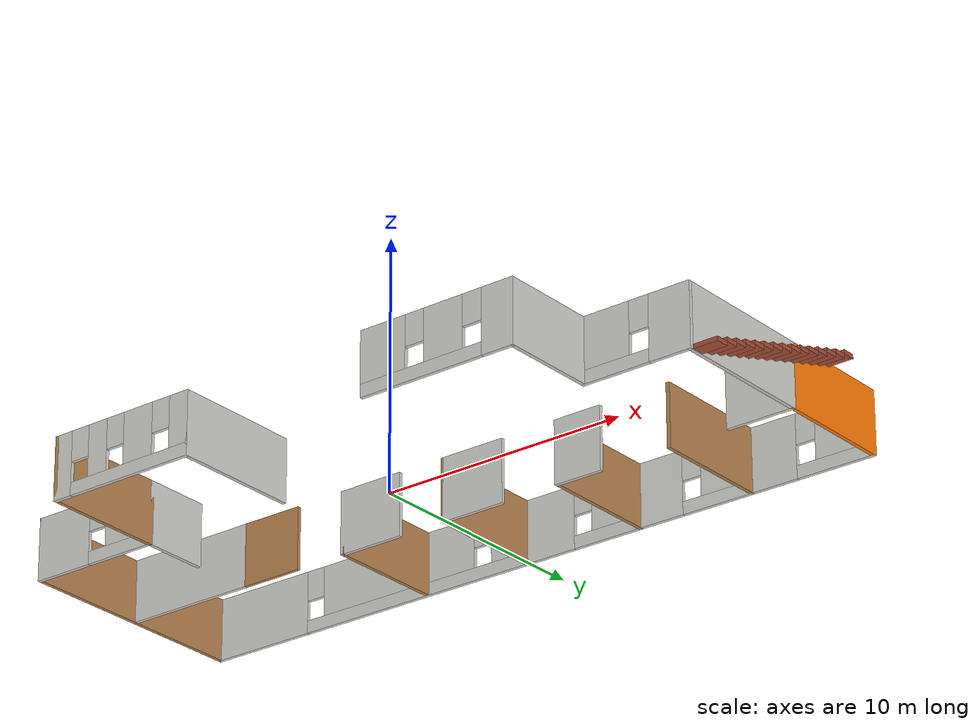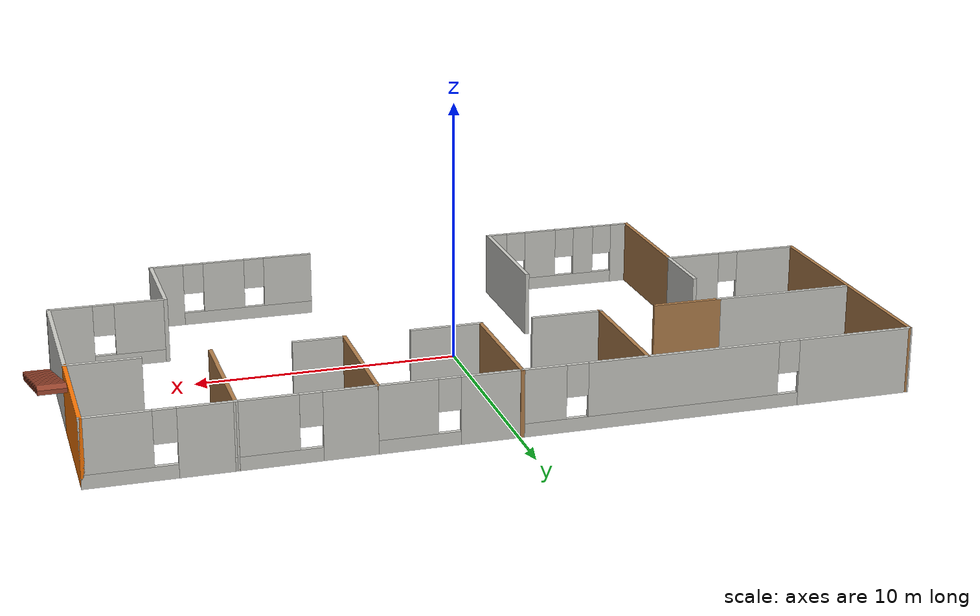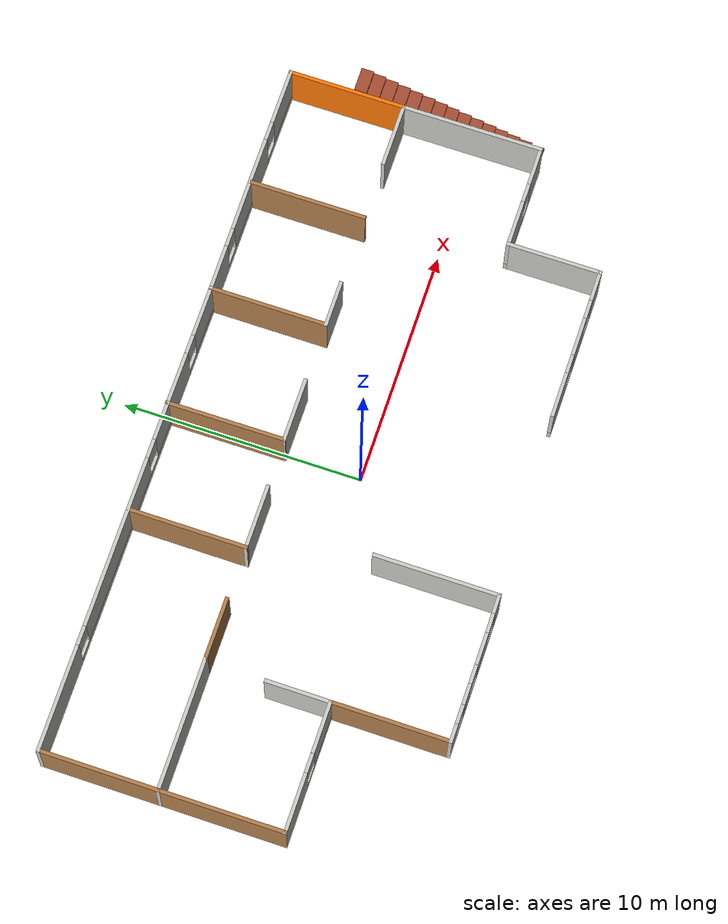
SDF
<?xml version='1.0'?>
<sdf version='1.6'>
  <model name='Building'>
    <pose frame=''>0.521906 0.614781 0 0 -0 0</pose>
    <link name='Stairs_0'>
      <visual name='Stairs_0_Visual_0'>
        <pose frame=''>15.0099 -3.00809 0.083333 0 -0 -3.14159</pose>
        <geometry>
          <box>
            <size>1 0.530862 0.166667</size>
          </box>
        </geometry>
        <material>
          <script>
            <uri>file://media/materials/scripts/gazebo.material</uri>
            <name>Gazebo/Bricks</name>
          </script>
          <ambient>0.760784 0.662745 0.627451 1</ambient>
        </material>
        <meta>
          <layer>0</layer>
        </meta>
      </visual>
      <collision name='Stairs_0_Collision_0'>
        <geometry>
          <box>
            <size>1 0.530862 0.166667</size>
          </box>
        </geometry>
        <pose frame=''>15.0099 -3.00809 0.083333 0 -0 -3.14159</pose>
      </collision>
      <visual name='Stairs_0_Visual_1'>
        <pose frame=''>15.0099 -2.47723 0.25 0 -0 -3.14159</pose>
        <geometry>
          <box>
            <size>1 0.530862 0.166667</size>
          </box>
        </geometry>
        <material>
          <script>
            <uri>file://media/materials/scripts/gazebo.material</uri>
            <name>Gazebo/Bricks</name>
          </script>
          <ambient>0.760784 0.662745 0.627451 1</ambient>
        </material>
        <meta>
          <layer>0</layer>
        </meta>
      </visual>
      <collision name='Stairs_0_Collision_1'>
        <geometry>
          <box>
            <size>1 0.530862 0.166667</size>
          </box>
        </geometry>
        <pose frame=''>15.0099 -2.47723 0.25 0 -0 -3.14159</pose>
      </collision>
      <visual name='Stairs_0_Visual_2'>
        <pose frame=''>15.0099 -1.94637 0.416667 0 -0 -3.14159</pose>
        <geometry>
          <box>
            <size>1 0.530862 0.166667</size>
          </box>
        </geometry>
        <material>
          <script>
            <uri>file://media/materials/scripts/gazebo.material</uri>
            <name>Gazebo/Bricks</name>
          </script>
          <ambient>0.760784 0.662745 0.627451 1</ambient>
        </material>
        <meta>
          <layer>0</layer>
        </meta>
      </visual>
      <collision name='Stairs_0_Collision_2'>
        <geometry>
          <box>
            <size>1 0.530862 0.166667</size>
          </box>
        </geometry>
        <pose frame=''>15.0099 -1.94637 0.416667 0 -0 -3.14159</pose>
      </collision>
      <visual name='Stairs_0_Visual_3'>
        <pose frame=''>15.0099 -1.41551 0.583333 0 -0 -3.14159</pose>
        <geometry>
          <box>
            <size>1 0.530862 0.166667</size>
          </box>
        </geometry>
        <material>
          <script>
            <uri>file://media/materials/scripts/gazebo.material</uri>
            <name>Gazebo/Bricks</name>
          </script>
          <ambient>0.760784 0.662745 0.627451 1</ambient>
        </material>
        <meta>
          <layer>0</layer>
        </meta>
      </visual>
      <collision name='Stairs_0_Collision_3'>
        <geometry>
          <box>
            <size>1 0.530862 0.166667</size>
          </box>
        </geometry>
        <pose frame=''>15.0099 -1.41551 0.583333 0 -0 -3.14159</pose>
      </collision>
      <visual name='Stairs_0_Visual_4'>
        <pose frame=''>15.0099 -0.884647 0.75 0 -0 -3.14159</pose>
        <geometry>
          <box>
            <size>1 0.530862 0.166667</size>
          </box>
        </geometry>
        <material>
          <script>
            <uri>file://media/materials/scripts/gazebo.material</uri>
            <name>Gazebo/Bricks</name>
          </script>
          <ambient>0.760784 0.662745 0.627451 1</ambient>
        </material>
        <meta>
          <layer>0</layer>
        </meta>
      </visual>
      <collision name='Stairs_0_Collision_4'>
        <geometry>
          <box>
            <size>1 0.530862 0.166667</size>
          </box>
        </geometry>
        <pose frame=''>15.0099 -0.884647 0.75 0 -0 -3.14159</pose>
      </collision>
      <visual name='Stairs_0_Visual_5'>
        <pose frame=''>15.0099 -0.353786 0.916667 0 -0 -3.14159</pose>
        <geometry>
          <box>
            <size>1 0.530862 0.166667</size>
          </box>
        </geometry>
        <material>
          <script>
            <uri>file://media/materials/scripts/gazebo.material</uri>
            <name>Gazebo/Bricks</name>
          </script>
          <ambient>0.760784 0.662745 0.627451 1</ambient>
        </material>
        <meta>
          <layer>0</layer>
        </meta>
      </visual>
      <collision name='Stairs_0_Collision_5'>
        <geometry>
          <box>
            <size>1 0.530862 0.166667</size>
          </box>
        </geometry>
        <pose frame=''>15.0099 -0.353786 0.916667 0 -0 -3.14159</pose>
      </collision>
      <visual name='Stairs_0_Visual_6'>
        <pose frame=''>15.0099 0.177076 1.08333 0 -0 -3.14159</pose>
        <geometry>
          <box>
            <size>1 0.530862 0.166667</size>
          </box>
        </geometry>
        <material>
          <script>
            <uri>file://media/materials/scripts/gazebo.material</uri>
            <name>Gazebo/Bricks</name>
          </script>
          <ambient>0.760784 0.662745 0.627451 1</ambient>
        </material>
        <meta>
          <layer>0</layer>
        </meta>
      </visual>
      <collision name='Stairs_0_Collision_6'>
        <geometry>
          <box>
            <size>1 0.530862 0.166667</size>
          </box>
        </geometry>
        <pose frame=''>15.0099 0.177076 1.08333 0 -0 -3.14159</pose>
      </collision>
      <visual name='Stairs_0_Visual_7'>
        <pose frame=''>15.0099 0.707938 1.25 0 -0 -3.14159</pose>
        <geometry>
          <box>
            <size>1 0.530862 0.166667</size>
          </box>
        </geometry>
        <material>
          <script>
            <uri>file://media/materials/scripts/gazebo.material</uri>
            <name>Gazebo/Bricks</name>
          </script>
          <ambient>0.760784 0.662745 0.627451 1</ambient>
        </material>
        <meta>
          <layer>0</layer>
        </meta>
      </visual>
      <collision name='Stairs_0_Collision_7'>
        <geometry>
          <box>
            <size>1 0.530862 0.166667</size>
          </box>
        </geometry>
        <pose frame=''>15.0099 0.707938 1.25 0 -0 -3.14159</pose>
      </collision>
      <visual name='Stairs_0_Visual_8'>
        <pose frame=''>15.0099 1.2388 1.41667 0 -0 -3.14159</pose>
        <geometry>
          <box>
            <size>1 0.530862 0.166667</size>
          </box>
        </geometry>
        <material>
          <script>
            <uri>file://media/materials/scripts/gazebo.material</uri>
            <name>Gazebo/Bricks</name>
          </script>
          <ambient>0.760784 0.662745 0.627451 1</ambient>
        </material>
        <meta>
          <layer>0</layer>
        </meta>
      </visual>
      <collision name='Stairs_0_Collision_8'>
        <geometry>
          <box>
            <size>1 0.530862 0.166667</size>
          </box>
        </geometry>
        <pose frame=''>15.0099 1.2388 1.41667 0 -0 -3.14159</pose>
      </collision>
      <visual name='Stairs_0_Visual_9'>
        <pose frame=''>15.0099 1.76966 1.58333 0 -0 -3.14159</pose>
        <geometry>
          <box>
            <size>1 0.530862 0.166667</size>
          </box>
        </geometry>
        <material>
          <script>
            <uri>file://media/materials/scripts/gazebo.material</uri>
            <name>Gazebo/Bricks</name>
          </script>
          <ambient>0.760784 0.662745 0.627451 1</ambient>
        </material>
        <meta>
          <layer>0</layer>
        </meta>
      </visual>
      <collision name='Stairs_0_Collision_9'>
        <geometry>
          <box>
            <size>1 0.530862 0.166667</size>
          </box>
        </geometry>
        <pose frame=''>15.0099 1.76966 1.58333 0 -0 -3.14159</pose>
      </collision>
      <visual name='Stairs_0_Visual_10'>
        <pose frame=''>15.0099 2.30052 1.75 0 -0 -3.14159</pose>
        <geometry>
          <box>
            <size>1 0.530862 0.166667</size>
          </box>
        </geometry>
        <material>
          <script>
            <uri>file://media/materials/scripts/gazebo.material</uri>
            <name>Gazebo/Bricks</name>
          </script>
          <ambient>0.760784 0.662745 0.627451 1</ambient>
        </material>
        <meta>
          <layer>0</layer>
        </meta>
      </visual>
      <collision name='Stairs_0_Collision_10'>
        <geometry>
          <box>
            <size>1 0.530862 0.166667</size>
          </box>
        </geometry>
        <pose frame=''>15.0099 2.30052 1.75 0 -0 -3.14159</pose>
      </collision>
      <visual name='Stairs_0_Visual_11'>
        <pose frame=''>15.0099 2.83139 1.91667 0 -0 -3.14159</pose>
        <geometry>
          <box>
            <size>1 0.530862 0.166667</size>
          </box>
        </geometry>
        <material>
          <script>
            <uri>file://media/materials/scripts/gazebo.material</uri>
            <name>Gazebo/Bricks</name>
          </script>
          <ambient>0.760784 0.662745 0.627451 1</ambient>
        </material>
        <meta>
          <layer>0</layer>
        </meta>
      </visual>
      <collision name='Stairs_0_Collision_11'>
        <geometry>
          <box>
            <size>1 0.530862 0.166667</size>
          </box>
        </geometry>
        <pose frame=''>15.0099 2.83139 1.91667 0 -0 -3.14159</pose>
      </collision>
      <visual name='Stairs_0_Visual_12'>
        <pose frame=''>15.0099 3.36225 2.08333 0 -0 -3.14159</pose>
        <geometry>
          <box>
            <size>1 0.530862 0.166667</size>
          </box>
        </geometry>
        <material>
          <script>
            <uri>file://media/materials/scripts/gazebo.material</uri>
            <name>Gazebo/Bricks</name>
          </script>
          <ambient>0.760784 0.662745 0.627451 1</ambient>
        </material>
        <meta>
          <layer>0</layer>
        </meta>
      </visual>
      <collision name='Stairs_0_Collision_12'>
        <geometry>
          <box>
            <size>1 0.530862 0.166667</size>
          </box>
        </geometry>
        <pose frame=''>15.0099 3.36225 2.08333 0 -0 -3.14159</pose>
      </collision>
      <visual name='Stairs_0_Visual_13'>
        <pose frame=''>15.0099 3.89311 2.25 0 -0 -3.14159</pose>
        <geometry>
          <box>
            <size>1 0.530862 0.166667</size>
          </box>
        </geometry>
        <material>
          <script>
            <uri>file://media/materials/scripts/gazebo.material</uri>
            <name>Gazebo/Bricks</name>
          </script>
          <ambient>0.760784 0.662745 0.627451 1</ambient>
        </material>
        <meta>
          <layer>0</layer>
        </meta>
      </visual>
      <collision name='Stairs_0_Collision_13'>
        <geometry>
          <box>
            <size>1 0.530862 0.166667</size>
          </box>
        </geometry>
        <pose frame=''>15.0099 3.89311 2.25 0 -0 -3.14159</pose>
      </collision>
      <visual name='Stairs_0_Visual_14'>
        <pose frame=''>15.0099 4.42397 2.41667 0 -0 -3.14159</pose>
        <geometry>
          <box>
            <size>1 0.530862 0.166667</size>
          </box>
        </geometry>
        <material>
          <script>
            <uri>file://media/materials/scripts/gazebo.material</uri>
            <name>Gazebo/Bricks</name>
          </script>
          <ambient>0.760784 0.662745 0.627451 1</ambient>
        </material>
        <meta>
          <layer>0</layer>
        </meta>
      </visual>
      <collision name='Stairs_0_Collision_14'>
        <geometry>
          <box>
            <size>1 0.530862 0.166667</size>
          </box>
        </geometry>
        <pose frame=''>15.0099 4.42397 2.41667 0 -0 -3.14159</pose>
      </collision>
    </link>
    <link name='Wall_10'>
      <collision name='Wall_10_Collision'>
        <geometry>
          <box>
            <size>5.01454 0.15 2.5</size>
          </box>
        </geometry>
        <pose frame=''>0 0 1.25 0 -0 0</pose>
      </collision>
      <visual name='Wall_10_Visual'>
        <pose frame=''>0 0 1.25 0 -0 0</pose>
        <geometry>
          <box>
            <size>5.01454 0.15 2.5</size>
          </box>
        </geometry>
        <material>
          <script>
            <uri>file://media/materials/scripts/gazebo.material</uri>
            <name>Gazebo/Wood</name>
          </script>
          <ambient>1 1 1 1</ambient>
        </material>
        <meta>
          <layer>0</layer>
        </meta>
      </visual>
      <pose frame=''>-0.636839 4.97487 0 0 -0 -1.56723</pose>
    </link>
    <link name='Wall_12'>
      <pose frame=''>1.91233 7.37959 0 0 -0 -0.002835</pose>
      <visual name='Wall_12_Visual_0'>
        <pose frame=''>-1.49665 0 1.25 0 -0 0</pose>
        <geometry>
          <box>
            <size>2.2724 0.15 2.5</size>
          </box>
        </geometry>
        <material>
          <script>
            <uri>file://media/materials/scripts/gazebo.material</uri>
            <name>Gazebo/CeilingTiled</name>
          </script>
          <ambient>0.996078 0.47451 0.0196078 1</ambient>
        </material>
        <meta>
          <layer>0</layer>
        </meta>
      </visual>
      <collision name='Wall_12_Collision_0'>
        <geometry>
          <box>
            <size>2.2724 0.15 2.5</size>
          </box>
        </geometry>
        <pose frame=''>-1.49665 0 1.25 0 -0 0</pose>
      </collision>
      <visual name='Wall_12_Visual_1'>
        <pose frame=''>1.1362 0 0.25 0 -0 0</pose>
        <geometry>
          <box>
            <size>2.99329 0.15 0.5</size>
          </box>
        </geometry>
        <material>
          <script>
            <uri>file://media/materials/scripts/gazebo.material</uri>
            <name>Gazebo/CeilingTiled</name>
          </script>
          <ambient>0.996078 0.47451 0.0196078 1</ambient>
        </material>
        <meta>
          <layer>0</layer>
        </meta>
      </visual>
      <collision name='Wall_12_Collision_1'>
        <geometry>
          <box>
            <size>2.99329 0.15 0.5</size>
          </box>
        </geometry>
        <pose frame=''>1.1362 0 0.25 0 -0 0</pose>
      </collision>
      <visual name='Wall_12_Visual_2'>
        <pose frame=''>1.5362 0 1.5 0 -0 0</pose>
        <geometry>
          <box>
            <size>2.19329 0.15 2</size>
          </box>
        </geometry>
        <material>
          <script>
            <uri>file://media/materials/scripts/gazebo.material</uri>
            <name>Gazebo/CeilingTiled</name>
          </script>
          <ambient>0.996078 0.47451 0.0196078 1</ambient>
        </material>
        <meta>
          <layer>0</layer>
        </meta>
      </visual>
      <collision name='Wall_12_Collision_2'>
        <geometry>
          <box>
            <size>2.19329 0.15 2</size>
          </box>
        </geometry>
        <pose frame=''>1.5362 0 1.5 0 -0 0</pose>
      </collision>
      <visual name='Wall_12_Visual_3'>
        <pose frame=''>0.039557 0 1.9 0 -0 0</pose>
        <geometry>
          <box>
            <size>0.8 0.15 1.2</size>
          </box>
        </geometry>
        <material>
          <script>
            <uri>file://media/materials/scripts/gazebo.material</uri>
            <name>Gazebo/CeilingTiled</name>
          </script>
          <ambient>0.996078 0.47451 0.0196078 1</ambient>
        </material>
        <meta>
          <layer>0</layer>
        </meta>
      </visual>
      <collision name='Wall_12_Collision_3'>
        <geometry>
          <box>
            <size>0.8 0.15 1.2</size>
          </box>
        </geometry>
        <pose frame=''>0.039557 0 1.9 0 -0 0</pose>
      </collision>
    </link>
    <link name='Wall_15'>
      <pose frame=''>6.89267 7.38248 0 0 -0 0.004185</pose>
      <visual name='Wall_15_Visual_0'>
        <pose frame=''>-1.50763 0 1.25 0 -0 0</pose>
        <geometry>
          <box>
            <size>1.97978 0.15 2.5</size>
          </box>
        </geometry>
        <material>
          <script>
            <uri>file://media/materials/scripts/gazebo.material</uri>
            <name>Gazebo/CeilingTiled</name>
          </script>
          <ambient>0.435294 0.796078 0.67451 1</ambient>
        </material>
        <meta>
          <layer>0</layer>
        </meta>
      </visual>
      <collision name='Wall_15_Collision_0'>
        <geometry>
          <box>
            <size>1.97978 0.15 2.5</size>
          </box>
        </geometry>
        <pose frame=''>-1.50763 0 1.25 0 -0 0</pose>
      </collision>
      <visual name='Wall_15_Visual_1'>
        <pose frame=''>0.989888 0 0.25 0 -0 0</pose>
        <geometry>
          <box>
            <size>3.01526 0.15 0.5</size>
          </box>
        </geometry>
        <material>
          <script>
            <uri>file://media/materials/scripts/gazebo.material</uri>
            <name>Gazebo/CeilingTiled</name>
          </script>
          <ambient>0.435294 0.796078 0.67451 1</ambient>
        </material>
        <meta>
          <layer>0</layer>
        </meta>
      </visual>
      <collision name='Wall_15_Collision_1'>
        <geometry>
          <box>
            <size>3.01526 0.15 0.5</size>
          </box>
        </geometry>
        <pose frame=''>0.989888 0 0.25 0 -0 0</pose>
      </collision>
      <visual name='Wall_15_Visual_2'>
        <pose frame=''>1.38989 0 1.5 0 -0 0</pose>
        <geometry>
          <box>
            <size>2.21526 0.15 2</size>
          </box>
        </geometry>
        <material>
          <script>
            <uri>file://media/materials/scripts/gazebo.material</uri>
            <name>Gazebo/CeilingTiled</name>
          </script>
          <ambient>0.435294 0.796078 0.67451 1</ambient>
        </material>
        <meta>
          <layer>0</layer>
        </meta>
      </visual>
      <collision name='Wall_15_Collision_2'>
        <geometry>
          <box>
            <size>2.21526 0.15 2</size>
          </box>
        </geometry>
        <pose frame=''>1.38989 0 1.5 0 -0 0</pose>
      </collision>
      <visual name='Wall_15_Visual_3'>
        <pose frame=''>-0.117741 0 1.9 0 -0 0</pose>
        <geometry>
          <box>
            <size>0.8 0.15 1.2</size>
          </box>
        </geometry>
        <material>
          <script>
            <uri>file://media/materials/scripts/gazebo.material</uri>
            <name>Gazebo/CeilingTiled</name>
          </script>
          <ambient>0.435294 0.796078 0.67451 1</ambient>
        </material>
        <meta>
          <layer>0</layer>
        </meta>
      </visual>
      <collision name='Wall_15_Collision_3'>
        <geometry>
          <box>
            <size>0.8 0.15 1.2</size>
          </box>
        </geometry>
        <pose frame=''>-0.117741 0 1.9 0 -0 0</pose>
      </collision>
    </link>
    <link name='Wall_16'>
      <collision name='Wall_16_Collision'>
        <geometry>
          <box>
            <size>5 0.15 2.5</size>
          </box>
        </geometry>
        <pose frame=''>0 0 1.25 0 -0 0</pose>
      </collision>
      <visual name='Wall_16_Visual'>
        <pose frame=''>0 0 1.25 0 -0 0</pose>
        <geometry>
          <box>
            <size>5 0.15 2.5</size>
          </box>
        </geometry>
        <material>
          <script>
            <uri>file://media/materials/scripts/gazebo.material</uri>
            <name>Gazebo/Wood</name>
          </script>
          <ambient>1 1 1 1</ambient>
        </material>
        <meta>
          <layer>0</layer>
        </meta>
      </visual>
      <pose frame=''>9.31516 4.96762 0 0 -0 -1.5708</pose>
    </link>
    <link name='Wall_18'>
      <collision name='Wall_18_Collision'>
        <geometry>
          <box>
            <size>5.57093 0.15 2.5</size>
          </box>
        </geometry>
        <pose frame=''>0 0 1.25 0 -0 0</pose>
      </collision>
      <visual name='Wall_18_Visual'>
        <pose frame=''>0 0 1.25 0 -0 0</pose>
        <geometry>
          <box>
            <size>5.57093 0.15 2.5</size>
          </box>
        </geometry>
        <material>
          <script>
            <uri>file://media/materials/scripts/gazebo.material</uri>
            <name>Gazebo/CeilingTiled</name>
          </script>
          <ambient>0.435294 0.796078 0.67451 1</ambient>
        </material>
        <meta>
          <layer>0</layer>
        </meta>
      </visual>
      <pose frame=''>-12.7244 2.54262 0 0 -0 3.14159</pose>
    </link>
    <link name='Wall_20'>
      <collision name='Wall_20_Collision'>
        <geometry>
          <box>
            <size>5.25 0.15 2.5</size>
          </box>
        </geometry>
        <pose frame=''>0 0 1.25 0 -0 0</pose>
      </collision>
      <visual name='Wall_20_Visual'>
        <pose frame=''>0 0 1.25 0 -0 0</pose>
        <geometry>
          <box>
            <size>5.25 0.15 2.5</size>
          </box>
        </geometry>
        <material>
          <script>
            <uri>file://media/materials/scripts/gazebo.material</uri>
            <name>Gazebo/Wood</name>
          </script>
          <ambient>1 1 1 1</ambient>
        </material>
        <meta>
          <layer>0</layer>
        </meta>
      </visual>
      <pose frame=''>-15.4348 -0.007385 0 0 -0 -1.5708</pose>
    </link>
    <link name='Wall_21'>
      <pose frame=''>-12.7598 -2.55739 0 0 -0 0</pose>
      <visual name='Wall_21_Visual_0'>
        <pose frame=''>-1.50027 0 1.25 0 -0 0</pose>
        <geometry>
          <box>
            <size>2.49946 0.15 2.5</size>
          </box>
        </geometry>
        <material>
          <script>
            <uri>file://media/materials/scripts/gazebo.material</uri>
            <name>Gazebo/CeilingTiled</name>
          </script>
          <ambient>0.921569 0.807843 0.615686 1</ambient>
        </material>
        <meta>
          <layer>0</layer>
        </meta>
      </visual>
      <collision name='Wall_21_Collision_0'>
        <geometry>
          <box>
            <size>2.49946 0.15 2.5</size>
          </box>
        </geometry>
        <pose frame=''>-1.50027 0 1.25 0 -0 0</pose>
      </collision>
      <visual name='Wall_21_Visual_1'>
        <pose frame=''>1.24973 0 0.25 0 -0 0</pose>
        <geometry>
          <box>
            <size>3.00054 0.15 0.5</size>
          </box>
        </geometry>
        <material>
          <script>
            <uri>file://media/materials/scripts/gazebo.material</uri>
            <name>Gazebo/CeilingTiled</name>
          </script>
          <ambient>0.921569 0.807843 0.615686 1</ambient>
        </material>
        <meta>
          <layer>0</layer>
        </meta>
      </visual>
      <collision name='Wall_21_Collision_1'>
        <geometry>
          <box>
            <size>3.00054 0.15 0.5</size>
          </box>
        </geometry>
        <pose frame=''>1.24973 0 0.25 0 -0 0</pose>
      </collision>
      <visual name='Wall_21_Visual_2'>
        <pose frame=''>1.64973 0 1.5 0 -0 0</pose>
        <geometry>
          <box>
            <size>2.20054 0.15 2</size>
          </box>
        </geometry>
        <material>
          <script>
            <uri>file://media/materials/scripts/gazebo.material</uri>
            <name>Gazebo/CeilingTiled</name>
          </script>
          <ambient>0.921569 0.807843 0.615686 1</ambient>
        </material>
        <meta>
          <layer>0</layer>
        </meta>
      </visual>
      <collision name='Wall_21_Collision_2'>
        <geometry>
          <box>
            <size>2.20054 0.15 2</size>
          </box>
        </geometry>
        <pose frame=''>1.64973 0 1.5 0 -0 0</pose>
      </collision>
      <visual name='Wall_21_Visual_3'>
        <pose frame=''>0.149458 0 1.9 0 -0 0</pose>
        <geometry>
          <box>
            <size>0.8 0.15 1.2</size>
          </box>
        </geometry>
        <material>
          <script>
            <uri>file://media/materials/scripts/gazebo.material</uri>
            <name>Gazebo/CeilingTiled</name>
          </script>
          <ambient>0.921569 0.807843 0.615686 1</ambient>
        </material>
        <meta>
          <layer>0</layer>
        </meta>
      </visual>
      <collision name='Wall_21_Collision_3'>
        <geometry>
          <box>
            <size>0.8 0.15 1.2</size>
          </box>
        </geometry>
        <pose frame=''>0.149458 0 1.9 0 -0 0</pose>
      </collision>
    </link>
    <link name='Wall_22'>
      <collision name='Wall_22_Collision'>
        <geometry>
          <box>
            <size>5 0.15 2.5</size>
          </box>
        </geometry>
        <pose frame=''>0 0 1.25 0 -0 0</pose>
      </collision>
      <visual name='Wall_22_Visual'>
        <pose frame=''>0 0 1.25 0 -0 0</pose>
        <geometry>
          <box>
            <size>5 0.15 2.5</size>
          </box>
        </geometry>
        <material>
          <script>
            <uri>file://media/materials/scripts/gazebo.material</uri>
            <name>Gazebo/Wood</name>
          </script>
          <ambient>1 1 1 1</ambient>
        </material>
        <meta>
          <layer>0</layer>
        </meta>
      </visual>
      <pose frame=''>-10.0848 -4.98238 0 0 -0 -1.5708</pose>
    </link>
    <link name='Wall_23'>
      <pose frame=''>-7.03484 -7.40738 0 0 -0 0</pose>
      <visual name='Wall_23_Visual_0'>
        <pose frame=''>-2.72612 0 1.25 0 -0 0</pose>
        <geometry>
          <box>
            <size>0.797767 0.15 2.5</size>
          </box>
        </geometry>
        <material>
          <script>
            <uri>file://media/materials/scripts/gazebo.material</uri>
            <name>Gazebo/CeilingTiled</name>
          </script>
          <ambient>0.921569 0.807843 0.615686 1</ambient>
        </material>
        <meta>
          <layer>0</layer>
        </meta>
      </visual>
      <collision name='Wall_23_Collision_0'>
        <geometry>
          <box>
            <size>0.797767 0.15 2.5</size>
          </box>
        </geometry>
        <pose frame=''>-2.72612 0 1.25 0 -0 0</pose>
      </collision>
      <visual name='Wall_23_Visual_1'>
        <pose frame=''>0.398883 0 0.25 0 -0 0</pose>
        <geometry>
          <box>
            <size>5.45223 0.15 0.5</size>
          </box>
        </geometry>
        <material>
          <script>
            <uri>file://media/materials/scripts/gazebo.material</uri>
            <name>Gazebo/CeilingTiled</name>
          </script>
          <ambient>0.921569 0.807843 0.615686 1</ambient>
        </material>
        <meta>
          <layer>0</layer>
        </meta>
      </visual>
      <collision name='Wall_23_Collision_1'>
        <geometry>
          <box>
            <size>5.45223 0.15 0.5</size>
          </box>
        </geometry>
        <pose frame=''>0.398883 0 0.25 0 -0 0</pose>
      </collision>
      <visual name='Wall_23_Visual_2'>
        <pose frame=''>-1.09245 0 1.5 0 -0 0</pose>
        <geometry>
          <box>
            <size>0.869566 0.15 2</size>
          </box>
        </geometry>
        <material>
          <script>
            <uri>file://media/materials/scripts/gazebo.material</uri>
            <name>Gazebo/CeilingTiled</name>
          </script>
          <ambient>0.921569 0.807843 0.615686 1</ambient>
        </material>
        <meta>
          <layer>0</layer>
        </meta>
      </visual>
      <collision name='Wall_23_Collision_2'>
        <geometry>
          <box>
            <size>0.869566 0.15 2</size>
          </box>
        </geometry>
        <pose frame=''>-1.09245 0 1.5 0 -0 0</pose>
      </collision>
      <visual name='Wall_23_Visual_3'>
        <pose frame=''>0.808999 0 1.5 0 -0 0</pose>
        <geometry>
          <box>
            <size>1.33333 0.15 2</size>
          </box>
        </geometry>
        <material>
          <script>
            <uri>file://media/materials/scripts/gazebo.material</uri>
            <name>Gazebo/CeilingTiled</name>
          </script>
          <ambient>0.921569 0.807843 0.615686 1</ambient>
        </material>
        <meta>
          <layer>0</layer>
        </meta>
      </visual>
      <collision name='Wall_23_Collision_3'>
        <geometry>
          <box>
            <size>1.33333 0.15 2</size>
          </box>
        </geometry>
        <pose frame=''>0.808999 0 1.5 0 -0 0</pose>
      </collision>
      <visual name='Wall_23_Visual_4'>
        <pose frame=''>2.70033 0 1.5 0 -0 0</pose>
        <geometry>
          <box>
            <size>0.849334 0.15 2</size>
          </box>
        </geometry>
        <material>
          <script>
            <uri>file://media/materials/scripts/gazebo.material</uri>
            <name>Gazebo/CeilingTiled</name>
          </script>
          <ambient>0.921569 0.807843 0.615686 1</ambient>
        </material>
        <meta>
          <layer>0</layer>
        </meta>
      </visual>
      <collision name='Wall_23_Collision_4'>
        <geometry>
          <box>
            <size>0.849334 0.15 2</size>
          </box>
        </geometry>
        <pose frame=''>2.70033 0 1.5 0 -0 0</pose>
      </collision>
      <visual name='Wall_23_Visual_5'>
        <pose frame=''>-1.92723 0 1.9 0 -0 0</pose>
        <geometry>
          <box>
            <size>0.8 0.15 1.2</size>
          </box>
        </geometry>
        <material>
          <script>
            <uri>file://media/materials/scripts/gazebo.material</uri>
            <name>Gazebo/CeilingTiled</name>
          </script>
          <ambient>0.921569 0.807843 0.615686 1</ambient>
        </material>
        <meta>
          <layer>0</layer>
        </meta>
      </visual>
      <collision name='Wall_23_Collision_5'>
        <geometry>
          <box>
            <size>0.8 0.15 1.2</size>
          </box>
        </geometry>
        <pose frame=''>-1.92723 0 1.9 0 -0 0</pose>
      </collision>
      <visual name='Wall_23_Visual_6'>
        <pose frame=''>-0.257668 0 1.9 0 -0 0</pose>
        <geometry>
          <box>
            <size>0.8 0.15 1.2</size>
          </box>
        </geometry>
        <material>
          <script>
            <uri>file://media/materials/scripts/gazebo.material</uri>
            <name>Gazebo/CeilingTiled</name>
          </script>
          <ambient>0.921569 0.807843 0.615686 1</ambient>
        </material>
        <meta>
          <layer>0</layer>
        </meta>
      </visual>
      <collision name='Wall_23_Collision_6'>
        <geometry>
          <box>
            <size>0.8 0.15 1.2</size>
          </box>
        </geometry>
        <pose frame=''>-0.257668 0 1.9 0 -0 0</pose>
      </collision>
      <visual name='Wall_23_Visual_7'>
        <pose frame=''>1.87567 0 1.9 0 -0 0</pose>
        <geometry>
          <box>
            <size>0.8 0.15 1.2</size>
          </box>
        </geometry>
        <material>
          <script>
            <uri>file://media/materials/scripts/gazebo.material</uri>
            <name>Gazebo/CeilingTiled</name>
          </script>
          <ambient>0.921569 0.807843 0.615686 1</ambient>
        </material>
        <meta>
          <layer>0</layer>
        </meta>
      </visual>
      <collision name='Wall_23_Collision_7'>
        <geometry>
          <box>
            <size>0.8 0.15 1.2</size>
          </box>
        </geometry>
        <pose frame=''>1.87567 0 1.9 0 -0 0</pose>
      </collision>
    </link>
    <link name='Wall_24'>
      <collision name='Wall_24_Collision'>
        <geometry>
          <box>
            <size>5.25 0.15 2.5</size>
          </box>
        </geometry>
        <pose frame=''>0 0 1.25 0 -0 0</pose>
      </collision>
      <visual name='Wall_24_Visual'>
        <pose frame=''>0 0 1.25 0 -0 0</pose>
        <geometry>
          <box>
            <size>5.25 0.15 2.5</size>
          </box>
        </geometry>
        <material>
          <script>
            <uri>file://media/materials/scripts/gazebo.material</uri>
            <name>Gazebo/CeilingTiled</name>
          </script>
          <ambient>1 0.764706 0.305882 1</ambient>
        </material>
        <meta>
          <layer>0</layer>
        </meta>
      </visual>
      <pose frame=''>-3.98484 -4.85738 0 0 -0 1.5708</pose>
    </link>
    <link name='Wall_28'>
      <collision name='Wall_28_Collision'>
        <geometry>
          <box>
            <size>6 0.15 2.5</size>
          </box>
        </geometry>
        <pose frame=''>0 0 1.25 0 -0 0</pose>
      </collision>
      <visual name='Wall_28_Visual'>
        <pose frame=''>0 0 1.25 0 -0 0</pose>
        <geometry>
          <box>
            <size>6 0.15 2.5</size>
          </box>
        </geometry>
        <material>
          <script>
            <uri>file://media/materials/scripts/gazebo.material</uri>
            <name>Gazebo/CeilingTiled</name>
          </script>
          <ambient>0.435294 0.796078 0.67451 1</ambient>
        </material>
        <meta>
          <layer>0</layer>
        </meta>
      </visual>
      <pose frame=''>14.4152 -0.382385 0 0 -0 -1.5708</pose>
    </link>
    <link name='Wall_29'>
      <pose frame=''>12.2402 -3.30739 0 0 -0 3.14159</pose>
      <visual name='Wall_29_Visual_0'>
        <pose frame=''>-1.40601 0 1.25 0 -0 0</pose>
        <geometry>
          <box>
            <size>1.68798 0.15 2.5</size>
          </box>
        </geometry>
        <material>
          <script>
            <uri>file://media/materials/scripts/gazebo.material</uri>
            <name>Gazebo/CeilingTiled</name>
          </script>
          <ambient>0.921569 0.807843 0.615686 1</ambient>
        </material>
        <meta>
          <layer>0</layer>
        </meta>
      </visual>
      <collision name='Wall_29_Collision_0'>
        <geometry>
          <box>
            <size>1.68798 0.15 2.5</size>
          </box>
        </geometry>
        <pose frame=''>-1.40601 0 1.25 0 -0 0</pose>
      </collision>
      <visual name='Wall_29_Visual_1'>
        <pose frame=''>0.843991 0 0.25 0 -0 0</pose>
        <geometry>
          <box>
            <size>2.81202 0.15 0.5</size>
          </box>
        </geometry>
        <material>
          <script>
            <uri>file://media/materials/scripts/gazebo.material</uri>
            <name>Gazebo/CeilingTiled</name>
          </script>
          <ambient>0.921569 0.807843 0.615686 1</ambient>
        </material>
        <meta>
          <layer>0</layer>
        </meta>
      </visual>
      <collision name='Wall_29_Collision_1'>
        <geometry>
          <box>
            <size>2.81202 0.15 0.5</size>
          </box>
        </geometry>
        <pose frame=''>0.843991 0 0.25 0 -0 0</pose>
      </collision>
      <visual name='Wall_29_Visual_2'>
        <pose frame=''>1.24399 0 1.5 0 -0 0</pose>
        <geometry>
          <box>
            <size>2.01202 0.15 2</size>
          </box>
        </geometry>
        <material>
          <script>
            <uri>file://media/materials/scripts/gazebo.material</uri>
            <name>Gazebo/CeilingTiled</name>
          </script>
          <ambient>0.921569 0.807843 0.615686 1</ambient>
        </material>
        <meta>
          <layer>0</layer>
        </meta>
      </visual>
      <collision name='Wall_29_Collision_2'>
        <geometry>
          <box>
            <size>2.01202 0.15 2</size>
          </box>
        </geometry>
        <pose frame=''>1.24399 0 1.5 0 -0 0</pose>
      </collision>
      <visual name='Wall_29_Visual_3'>
        <pose frame=''>-0.162018 0 1.9 0 -0 0</pose>
        <geometry>
          <box>
            <size>0.8 0.15 1.2</size>
          </box>
        </geometry>
        <material>
          <script>
            <uri>file://media/materials/scripts/gazebo.material</uri>
            <name>Gazebo/CeilingTiled</name>
          </script>
          <ambient>0.921569 0.807843 0.615686 1</ambient>
        </material>
        <meta>
          <layer>0</layer>
        </meta>
      </visual>
      <collision name='Wall_29_Collision_3'>
        <geometry>
          <box>
            <size>0.8 0.15 1.2</size>
          </box>
        </geometry>
        <pose frame=''>-0.162018 0 1.9 0 -0 0</pose>
      </collision>
    </link>
    <link name='Wall_30'>
      <collision name='Wall_30_Collision'>
        <geometry>
          <box>
            <size>4 0.15 2.5</size>
          </box>
        </geometry>
        <pose frame=''>0 0 1.25 0 -0 0</pose>
      </collision>
      <visual name='Wall_30_Visual'>
        <pose frame=''>0 0 1.25 0 -0 0</pose>
        <geometry>
          <box>
            <size>4 0.15 2.5</size>
          </box>
        </geometry>
        <material>
          <script>
            <uri>file://media/materials/scripts/gazebo.material</uri>
            <name>Gazebo/CeilingTiled</name>
          </script>
          <ambient>1 0.764706 0.305882 1</ambient>
        </material>
        <meta>
          <layer>0</layer>
        </meta>
      </visual>
      <pose frame=''>10.0652 -5.23238 0 0 -0 -1.5708</pose>
    </link>
    <link name='Wall_31'>
      <pose frame=''>6.89016 -7.15738 0 0 -0 3.14159</pose>
      <visual name='Wall_31_Visual_0'>
        <pose frame=''>-2.58681 0 1.25 0 -0 0</pose>
        <geometry>
          <box>
            <size>1.32639 0.15 2.5</size>
          </box>
        </geometry>
        <material>
          <script>
            <uri>file://media/materials/scripts/gazebo.material</uri>
            <name>Gazebo/CeilingTiled</name>
          </script>
          <ambient>0.921569 0.807843 0.615686 1</ambient>
        </material>
        <meta>
          <layer>0</layer>
        </meta>
      </visual>
      <collision name='Wall_31_Collision_0'>
        <geometry>
          <box>
            <size>1.32639 0.15 2.5</size>
          </box>
        </geometry>
        <pose frame=''>-2.58681 0 1.25 0 -0 0</pose>
      </collision>
      <visual name='Wall_31_Visual_1'>
        <pose frame=''>0.663194 0 0.25 0 -0 0</pose>
        <geometry>
          <box>
            <size>5.17361 0.15 0.5</size>
          </box>
        </geometry>
        <material>
          <script>
            <uri>file://media/materials/scripts/gazebo.material</uri>
            <name>Gazebo/CeilingTiled</name>
          </script>
          <ambient>0.921569 0.807843 0.615686 1</ambient>
        </material>
        <meta>
          <layer>0</layer>
        </meta>
      </visual>
      <collision name='Wall_31_Collision_1'>
        <geometry>
          <box>
            <size>5.17361 0.15 0.5</size>
          </box>
        </geometry>
        <pose frame=''>0.663194 0 0.25 0 -0 0</pose>
      </collision>
      <visual name='Wall_31_Visual_2'>
        <pose frame=''>-0.302357 0 1.5 0 -0 0</pose>
        <geometry>
          <box>
            <size>1.64251 0.15 2</size>
          </box>
        </geometry>
        <material>
          <script>
            <uri>file://media/materials/scripts/gazebo.material</uri>
            <name>Gazebo/CeilingTiled</name>
          </script>
          <ambient>0.921569 0.807843 0.615686 1</ambient>
        </material>
        <meta>
          <layer>0</layer>
        </meta>
      </visual>
      <collision name='Wall_31_Collision_2'>
        <geometry>
          <box>
            <size>1.64251 0.15 2</size>
          </box>
        </geometry>
        <pose frame=''>-0.302357 0 1.5 0 -0 0</pose>
      </collision>
      <visual name='Wall_31_Visual_3'>
        <pose frame=''>2.28445 0 1.5 0 -0 0</pose>
        <geometry>
          <box>
            <size>1.9311 0.15 2</size>
          </box>
        </geometry>
        <material>
          <script>
            <uri>file://media/materials/scripts/gazebo.material</uri>
            <name>Gazebo/CeilingTiled</name>
          </script>
          <ambient>0.921569 0.807843 0.615686 1</ambient>
        </material>
        <meta>
          <layer>0</layer>
        </meta>
      </visual>
      <collision name='Wall_31_Collision_3'>
        <geometry>
          <box>
            <size>1.9311 0.15 2</size>
          </box>
        </geometry>
        <pose frame=''>2.28445 0 1.5 0 -0 0</pose>
      </collision>
      <visual name='Wall_31_Visual_4'>
        <pose frame=''>-1.52361 0 1.9 0 -0 0</pose>
        <geometry>
          <box>
            <size>0.8 0.15 1.2</size>
          </box>
        </geometry>
        <material>
          <script>
            <uri>file://media/materials/scripts/gazebo.material</uri>
            <name>Gazebo/CeilingTiled</name>
          </script>
          <ambient>0.921569 0.807843 0.615686 1</ambient>
        </material>
        <meta>
          <layer>0</layer>
        </meta>
      </visual>
      <collision name='Wall_31_Collision_4'>
        <geometry>
          <box>
            <size>0.8 0.15 1.2</size>
          </box>
        </geometry>
        <pose frame=''>-1.52361 0 1.9 0 -0 0</pose>
      </collision>
      <visual name='Wall_31_Visual_5'>
        <pose frame=''>0.9189 0 1.9 0 -0 0</pose>
        <geometry>
          <box>
            <size>0.8 0.15 1.2</size>
          </box>
        </geometry>
        <material>
          <script>
            <uri>file://media/materials/scripts/gazebo.material</uri>
            <name>Gazebo/CeilingTiled</name>
          </script>
          <ambient>0.921569 0.807843 0.615686 1</ambient>
        </material>
        <meta>
          <layer>0</layer>
        </meta>
      </visual>
      <collision name='Wall_31_Collision_5'>
        <geometry>
          <box>
            <size>0.8 0.15 1.2</size>
          </box>
        </geometry>
        <pose frame=''>0.9189 0 1.9 0 -0 0</pose>
      </collision>
    </link>
    <link name='Wall_35'>
      <collision name='Wall_35_Collision'>
        <geometry>
          <box>
            <size>2.67907 0.15 2.5</size>
          </box>
        </geometry>
        <pose frame=''>0 0 1.25 0 -0 0</pose>
      </collision>
      <visual name='Wall_35_Visual'>
        <pose frame=''>0 0 1.25 0 -0 0</pose>
        <geometry>
          <box>
            <size>2.67907 0.15 2.5</size>
          </box>
        </geometry>
        <material>
          <script>
            <uri>file://media/materials/scripts/gazebo.material</uri>
            <name>Gazebo/Wood</name>
          </script>
          <ambient>1 1 1 1</ambient>
        </material>
        <meta>
          <layer>0</layer>
        </meta>
      </visual>
      <pose frame=''>-8.74937 2.54262 0 0 -0 0</pose>
    </link>
    <link name='Wall_37'>
      <collision name='Wall_37_Collision'>
        <geometry>
          <box>
            <size>2.75 0.15 2.5</size>
          </box>
        </geometry>
        <pose frame=''>0 0 1.25 0 -0 0</pose>
      </collision>
      <visual name='Wall_37_Visual'>
        <pose frame=''>0 0 1.25 0 -0 0</pose>
        <geometry>
          <box>
            <size>2.75 0.15 2.5</size>
          </box>
        </geometry>
        <material>
          <script>
            <uri>file://media/materials/scripts/gazebo.material</uri>
            <name>Gazebo/CeilingTiled</name>
          </script>
          <ambient>0.996078 0.47451 0.0196078 1</ambient>
        </material>
        <meta>
          <layer>0</layer>
        </meta>
      </visual>
      <pose frame=''>-3.97539 2.52234 0 0 -0 0</pose>
    </link>
    <link name='Wall_39'>
      <collision name='Wall_39_Collision'>
        <geometry>
          <box>
            <size>2.75 0.15 2.5</size>
          </box>
        </geometry>
        <pose frame=''>0 0 1.25 0 -0 0</pose>
      </collision>
      <visual name='Wall_39_Visual'>
        <pose frame=''>0 0 1.25 0 -0 0</pose>
        <geometry>
          <box>
            <size>2.75 0.15 2.5</size>
          </box>
        </geometry>
        <material>
          <script>
            <uri>file://media/materials/scripts/gazebo.material</uri>
            <name>Gazebo/CeilingTiled</name>
          </script>
          <ambient>0.996078 0.47451 0.0196078 1</ambient>
        </material>
        <meta>
          <layer>0</layer>
        </meta>
      </visual>
      <pose frame=''>0.671822 2.54262 0 0 -0 0</pose>
    </link>
    <link name='Wall_41'>
      <collision name='Wall_41_Collision'>
        <geometry>
          <box>
            <size>5 0.15 2.5</size>
          </box>
        </geometry>
        <pose frame=''>0 0 1.25 0 -0 0</pose>
      </collision>
      <visual name='Wall_41_Visual'>
        <pose frame=''>0 0 1.25 0 -0 0</pose>
        <geometry>
          <box>
            <size>5 0.15 2.5</size>
          </box>
        </geometry>
        <material>
          <script>
            <uri>file://media/materials/scripts/gazebo.material</uri>
            <name>Gazebo/Wood</name>
          </script>
          <ambient>1 1 1 1</ambient>
        </material>
        <meta>
          <layer>0</layer>
        </meta>
      </visual>
      <pose frame=''>-15.4348 4.96762 0 0 -0 1.5708</pose>
    </link>
    <link name='Wall_42'>
      <pose frame=''>-8.04017 7.38973 0 0 -0 -0.00039</pose>
      <visual name='Wall_42_Visual_0'>
        <pose frame=''>-5.24521 0 1.25 0 -0 0</pose>
        <geometry>
          <box>
            <size>4.44893 0.15 2.5</size>
          </box>
        </geometry>
        <material>
          <script>
            <uri>file://media/materials/scripts/gazebo.material</uri>
            <name>Gazebo/CeilingTiled</name>
          </script>
          <ambient>0.996078 0.47451 0.0196078 1</ambient>
        </material>
        <meta>
          <layer>0</layer>
        </meta>
      </visual>
      <collision name='Wall_42_Collision_0'>
        <geometry>
          <box>
            <size>4.44893 0.15 2.5</size>
          </box>
        </geometry>
        <pose frame=''>-5.24521 0 1.25 0 -0 0</pose>
      </collision>
      <visual name='Wall_42_Visual_1'>
        <pose frame=''>2.22446 0 0.25 0 -0 0</pose>
        <geometry>
          <box>
            <size>10.4904 0.15 0.5</size>
          </box>
        </geometry>
        <material>
          <script>
            <uri>file://media/materials/scripts/gazebo.material</uri>
            <name>Gazebo/CeilingTiled</name>
          </script>
          <ambient>0.996078 0.47451 0.0196078 1</ambient>
        </material>
        <meta>
          <layer>0</layer>
        </meta>
      </visual>
      <collision name='Wall_42_Collision_1'>
        <geometry>
          <box>
            <size>10.4904 0.15 0.5</size>
          </box>
        </geometry>
        <pose frame=''>2.22446 0 0.25 0 -0 0</pose>
      </collision>
      <visual name='Wall_42_Visual_2'>
        <pose frame=''>1.38113 0 1.5 0 -0 0</pose>
        <geometry>
          <box>
            <size>7.20375 0.15 2</size>
          </box>
        </geometry>
        <material>
          <script>
            <uri>file://media/materials/scripts/gazebo.material</uri>
            <name>Gazebo/CeilingTiled</name>
          </script>
          <ambient>0.996078 0.47451 0.0196078 1</ambient>
        </material>
        <meta>
          <layer>0</layer>
        </meta>
      </visual>
      <collision name='Wall_42_Collision_2'>
        <geometry>
          <box>
            <size>7.20375 0.15 2</size>
          </box>
        </geometry>
        <pose frame=''>1.38113 0 1.5 0 -0 0</pose>
      </collision>
      <visual name='Wall_42_Visual_3'>
        <pose frame=''>6.62634 0 1.5 0 -0 0</pose>
        <geometry>
          <box>
            <size>1.68666 0.15 2</size>
          </box>
        </geometry>
        <material>
          <script>
            <uri>file://media/materials/scripts/gazebo.material</uri>
            <name>Gazebo/CeilingTiled</name>
          </script>
          <ambient>0.996078 0.47451 0.0196078 1</ambient>
        </material>
        <meta>
          <layer>0</layer>
        </meta>
      </visual>
      <collision name='Wall_42_Collision_3'>
        <geometry>
          <box>
            <size>1.68666 0.15 2</size>
          </box>
        </geometry>
        <pose frame=''>6.62634 0 1.5 0 -0 0</pose>
      </collision>
      <visual name='Wall_42_Visual_4'>
        <pose frame=''>-2.62074 0 1.9 0 -0 0</pose>
        <geometry>
          <box>
            <size>0.8 0.15 1.2</size>
          </box>
        </geometry>
        <material>
          <script>
            <uri>file://media/materials/scripts/gazebo.material</uri>
            <name>Gazebo/CeilingTiled</name>
          </script>
          <ambient>0.996078 0.47451 0.0196078 1</ambient>
        </material>
        <meta>
          <layer>0</layer>
        </meta>
      </visual>
      <collision name='Wall_42_Collision_4'>
        <geometry>
          <box>
            <size>0.8 0.15 1.2</size>
          </box>
        </geometry>
        <pose frame=''>-2.62074 0 1.9 0 -0 0</pose>
      </collision>
      <visual name='Wall_42_Visual_5'>
        <pose frame=''>5.38301 0 1.9 0 -0 0</pose>
        <geometry>
          <box>
            <size>0.8 0.15 1.2</size>
          </box>
        </geometry>
        <material>
          <script>
            <uri>file://media/materials/scripts/gazebo.material</uri>
            <name>Gazebo/CeilingTiled</name>
          </script>
          <ambient>0.996078 0.47451 0.0196078 1</ambient>
        </material>
        <meta>
          <layer>0</layer>
        </meta>
      </visual>
      <collision name='Wall_42_Collision_5'>
        <geometry>
          <box>
            <size>0.8 0.15 1.2</size>
          </box>
        </geometry>
        <pose frame=''>5.38301 0 1.9 0 -0 0</pose>
      </collision>
    </link>
    <link name='Wall_44'>
      <collision name='Wall_44_Collision'>
        <geometry>
          <box>
            <size>5 0.15 2.5</size>
          </box>
        </geometry>
        <pose frame=''>0 0 1.25 0 -0 0</pose>
      </collision>
      <visual name='Wall_44_Visual'>
        <pose frame=''>0 0 1.25 0 -0 0</pose>
        <geometry>
          <box>
            <size>5 0.15 2.5</size>
          </box>
        </geometry>
        <material>
          <script>
            <uri>file://media/materials/scripts/gazebo.material</uri>
            <name>Gazebo/Wood</name>
          </script>
          <ambient>1 1 1 1</ambient>
        </material>
        <meta>
          <layer>0</layer>
        </meta>
      </visual>
      <pose frame=''>4.47017 4.94734 0 0 -0 -1.5708</pose>
    </link>
    <link name='Wall_45'>
      <collision name='Wall_45_Collision'>
        <geometry>
          <box>
            <size>2 0.15 2.5</size>
          </box>
        </geometry>
        <pose frame=''>0 0 1.25 0 -0 0</pose>
      </collision>
      <visual name='Wall_45_Visual'>
        <pose frame=''>0 0 1.25 0 -0 0</pose>
        <geometry>
          <box>
            <size>2 0.15 2.5</size>
          </box>
        </geometry>
        <material>
          <script>
            <uri>file://media/materials/scripts/gazebo.material</uri>
            <name>Gazebo/CeilingTiled</name>
          </script>
          <ambient>0.996078 0.47451 0.0196078 1</ambient>
        </material>
        <meta>
          <layer>0</layer>
        </meta>
      </visual>
      <pose frame=''>5.39517 2.52234 0 0 -0 0</pose>
    </link>
    <link name='Wall_47'>
      <collision name='Wall_47_Collision'>
        <geometry>
          <box>
            <size>5 0.15 2.5</size>
          </box>
        </geometry>
        <pose frame=''>0 0 1.25 0 -0 0</pose>
      </collision>
      <visual name='Wall_47_Visual'>
        <pose frame=''>0 0 1.25 0 -0 0</pose>
        <geometry>
          <box>
            <size>5 0.15 2.5</size>
          </box>
        </geometry>
        <material>
          <script>
            <uri>file://media/materials/scripts/gazebo.material</uri>
            <name>Gazebo/Wood</name>
          </script>
          <ambient>1 1 1 1</ambient>
        </material>
        <meta>
          <layer>0</layer>
        </meta>
      </visual>
      <pose frame=''>-5.27539 4.94734 0 0 -0 1.5708</pose>
    </link>
    <link name='Wall_49'>
      <pose frame=''>11.8652 7.39262 0 0 -0 0</pose>
      <visual name='Wall_49_Visual_0'>
        <pose frame=''>-1.60924 0 1.25 0 -0 0</pose>
        <geometry>
          <box>
            <size>2.03152 0.15 2.5</size>
          </box>
        </geometry>
        <material>
          <script>
            <uri>file://media/materials/scripts/gazebo.material</uri>
            <name>Gazebo/CeilingTiled</name>
          </script>
          <ambient>0.996078 0.47451 0.0196078 1</ambient>
        </material>
        <meta>
          <layer>0</layer>
        </meta>
      </visual>
      <collision name='Wall_49_Collision_0'>
        <geometry>
          <box>
            <size>2.03152 0.15 2.5</size>
          </box>
        </geometry>
        <pose frame=''>-1.60924 0 1.25 0 -0 0</pose>
      </collision>
      <visual name='Wall_49_Visual_1'>
        <pose frame=''>1.01576 0 0.25 0 -0 0</pose>
        <geometry>
          <box>
            <size>3.21848 0.15 0.5</size>
          </box>
        </geometry>
        <material>
          <script>
            <uri>file://media/materials/scripts/gazebo.material</uri>
            <name>Gazebo/CeilingTiled</name>
          </script>
          <ambient>0.996078 0.47451 0.0196078 1</ambient>
        </material>
        <meta>
          <layer>0</layer>
        </meta>
      </visual>
      <collision name='Wall_49_Collision_1'>
        <geometry>
          <box>
            <size>3.21848 0.15 0.5</size>
          </box>
        </geometry>
        <pose frame=''>1.01576 0 0.25 0 -0 0</pose>
      </collision>
      <visual name='Wall_49_Visual_2'>
        <pose frame=''>1.41576 0 1.5 0 -0 0</pose>
        <geometry>
          <box>
            <size>2.41848 0.15 2</size>
          </box>
        </geometry>
        <material>
          <script>
            <uri>file://media/materials/scripts/gazebo.material</uri>
            <name>Gazebo/CeilingTiled</name>
          </script>
          <ambient>0.996078 0.47451 0.0196078 1</ambient>
        </material>
        <meta>
          <layer>0</layer>
        </meta>
      </visual>
      <collision name='Wall_49_Collision_2'>
        <geometry>
          <box>
            <size>2.41848 0.15 2</size>
          </box>
        </geometry>
        <pose frame=''>1.41576 0 1.5 0 -0 0</pose>
      </collision>
      <visual name='Wall_49_Visual_3'>
        <pose frame=''>-0.19348 0 1.9 0 -0 0</pose>
        <geometry>
          <box>
            <size>0.8 0.15 1.2</size>
          </box>
        </geometry>
        <material>
          <script>
            <uri>file://media/materials/scripts/gazebo.material</uri>
            <name>Gazebo/CeilingTiled</name>
          </script>
          <ambient>0.996078 0.47451 0.0196078 1</ambient>
        </material>
        <meta>
          <layer>0</layer>
        </meta>
      </visual>
      <collision name='Wall_49_Collision_3'>
        <geometry>
          <box>
            <size>0.8 0.15 1.2</size>
          </box>
        </geometry>
        <pose frame=''>-0.19348 0 1.9 0 -0 0</pose>
      </collision>
    </link>
    <link name='Wall_50'>
      <collision name='Wall_50_Collision'>
        <geometry>
          <box>
            <size>5 0.15 2.5</size>
          </box>
        </geometry>
        <pose frame=''>0 0 1.25 0 -0 0</pose>
      </collision>
      <visual name='Wall_50_Visual'>
        <pose frame=''>0 0 1.25 0 -0 0</pose>
        <geometry>
          <box>
            <size>5 0.15 2.5</size>
          </box>
        </geometry>
        <material>
          <script>
            <uri>file://media/materials/scripts/gazebo.material</uri>
            <name>Gazebo/Grey</name>
          </script>
          <ambient>0.996078 0.47451 0.0196078 1</ambient>
        </material>
        <meta>
          <layer>0</layer>
        </meta>
      </visual>
      <pose frame=''>14.4152 4.96762 0 0 -0 -1.5708</pose>
    </link>
    <link name='Wall_52'>
      <collision name='Wall_52_Collision'>
        <geometry>
          <box>
            <size>2.75 0.15 2.5</size>
          </box>
        </geometry>
        <pose frame=''>0 0 1.25 0 -0 0</pose>
      </collision>
      <visual name='Wall_52_Visual'>
        <pose frame=''>0 0 1.25 0 -0 0</pose>
        <geometry>
          <box>
            <size>2.75 0.15 2.5</size>
          </box>
        </geometry>
        <material>
          <script>
            <uri>file://media/materials/scripts/gazebo.material</uri>
            <name>Gazebo/CeilingTiled</name>
          </script>
          <ambient>0.435294 0.796078 0.67451 1</ambient>
        </material>
        <meta>
          <layer>0</layer>
        </meta>
      </visual>
      <pose frame=''>13.1152 2.54262 0 0 -0 3.14159</pose>
    </link>
    <link name='Wall_54'>
      <collision name='Wall_54_Collision'>
        <geometry>
          <box>
            <size>2.75 0.15 2.5</size>
          </box>
        </geometry>
        <pose frame=''>0 0 1.25 0 -0 0</pose>
      </collision>
      <visual name='Wall_54_Visual'>
        <pose frame=''>0 0 1.25 0 -0 0</pose>
        <geometry>
          <box>
            <size>2.75 0.15 2.5</size>
          </box>
        </geometry>
        <material>
          <script>
            <uri>file://media/materials/scripts/gazebo.material</uri>
            <name>Gazebo/CeilingTiled</name>
          </script>
          <ambient>1 0.764706 0.305882 1</ambient>
        </material>
        <meta>
          <layer>0</layer>
        </meta>
      </visual>
      <pose frame=''>-10.0848 -1.25738 0 0 -0 1.5708</pose>
    </link>
    <static>1</static>
  </model>
</sdf>
